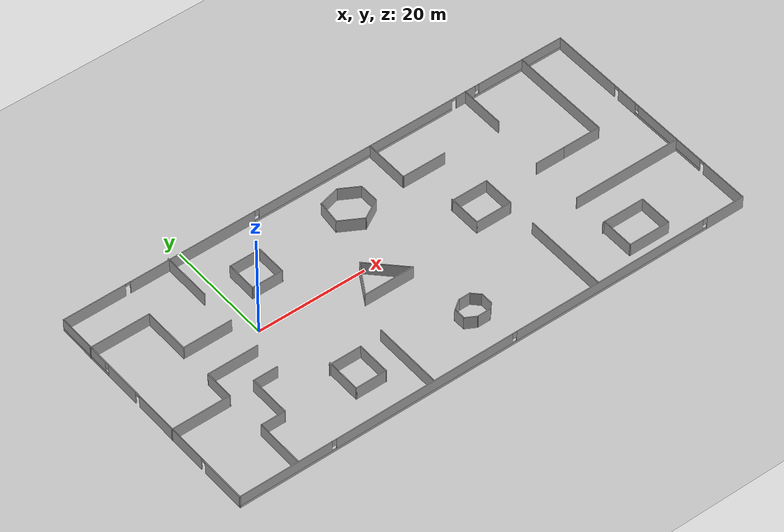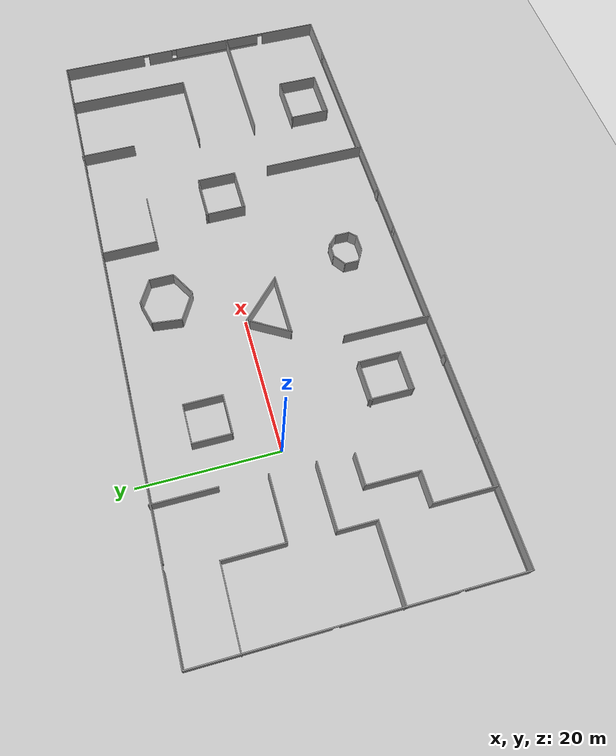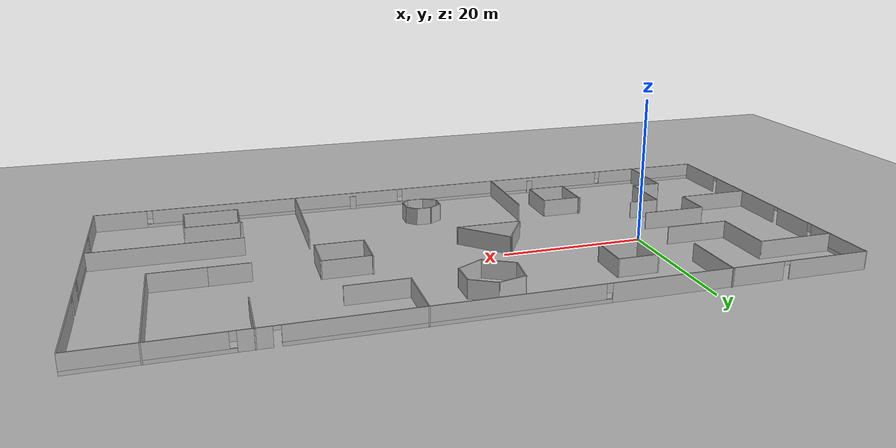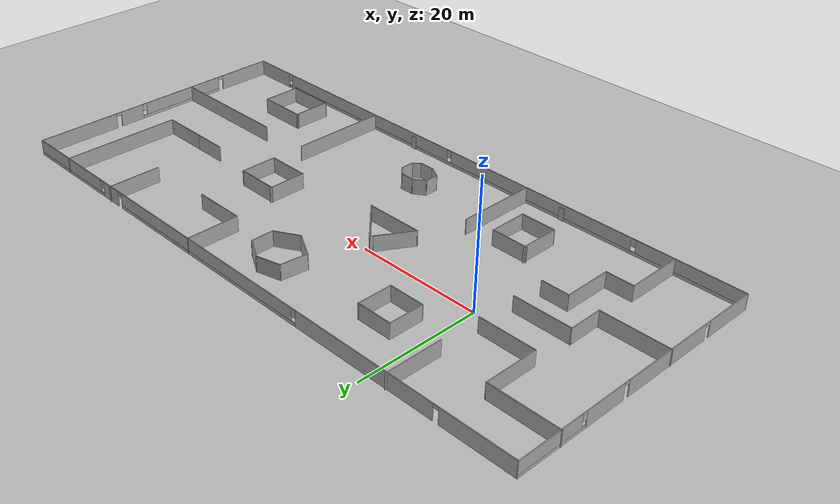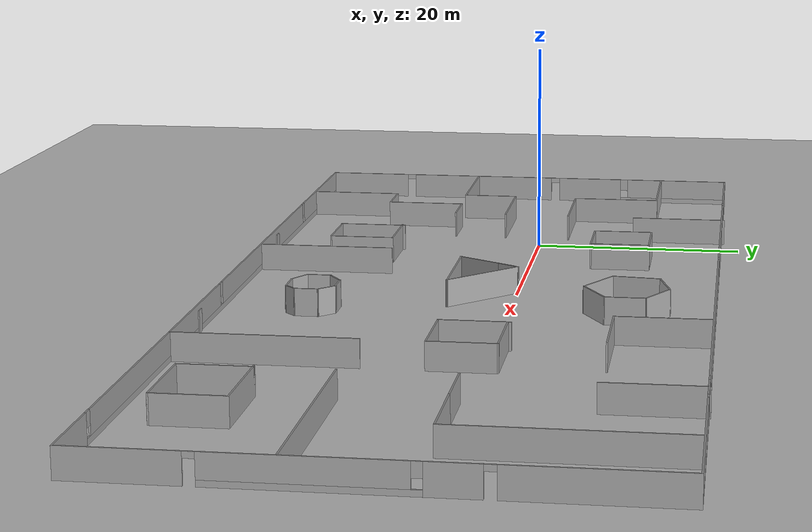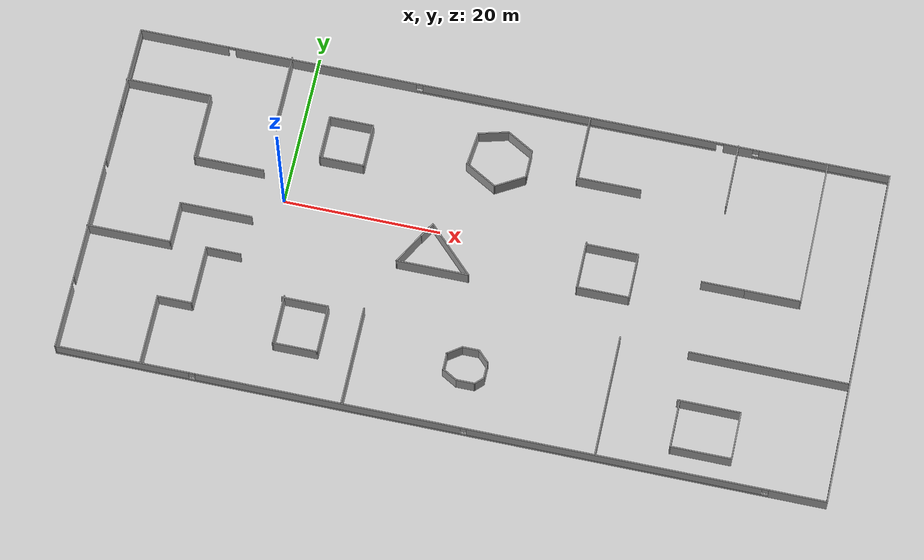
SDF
<sdf version="1.7">
 <world name="default">
  <light name="sun" type="directional">
   <pose>0 0 10 0 -0 0</pose>
   <diffuse>0.8 0.8 0.8 1</diffuse>
   <specular>0.2 0.2 0.2 1</specular>
   <attenuation>
    <range>1000</range>
    <constant>0.9</constant>
    <linear>0.01</linear>
    <quadratic>0.001</quadratic>
   </attenuation>
   <direction>-0.5 0.1 -0.9</direction>
   <spot><inner_angle>0</inner_angle><outer_angle>0</outer_angle><falloff>0</falloff></spot>
  </light>
  <model name="ground_plane">
   <static>1</static>
   <link name="link">
    <collision name="collision">
     <geometry><plane><normal>0 0 1</normal><size>160 160</size></plane></geometry>
     <surface>
      <contact><collide_bitmask>65535</collide_bitmask></contact>
      <friction><ode><mu>100</mu><mu2>50</mu2></ode></friction>
     </surface>
    </collision>
    <visual name="visual">
     <cast_shadows>0</cast_shadows>
     <geometry><plane><normal>0 0 1</normal><size>160 160</size></plane></geometry>
     <material>
      <script><uri>file://media/materials/scripts/gazebo.material</uri><name>Gazebo/Grey</name></script>
     </material>
    </visual>
   </link>
  </model>
  <gravity>0 0 -9.8</gravity>
  <magnetic_field>6e-06 2.3e-05 -4.2e-05</magnetic_field>
  <atmosphere type="adiabatic"/>
  <physics type="ode">
   <max_step_size>0.001</max_step_size>
   <real_time_factor>1</real_time_factor>
   <real_time_update_rate>1000</real_time_update_rate>
  </physics>
  <scene><ambient>0.4 0.4 0.4 1</ambient><background>0.7 0.7 0.7 1</background><shadows>1</shadows></scene>
  <audio><device>default</device></audio>
  <spherical_coordinates>
   <surface_model>EARTH_WGS84</surface_model>
   <latitude_deg>0</latitude_deg>
   <longitude_deg>0</longitude_deg>
   <elevation>0</elevation>
   <heading_deg>0</heading_deg>
  </spherical_coordinates>
  <model name="greatroom">
   <pose>25.3372 -3.54853 0 0 -0 0</pose>
   <link name="Door_4">
    <collision name="Door_4_Collision">
     <geometry><box><size>0.9 0.17 2</size></box></geometry>
     <pose>0 0 1 0 -0 0</pose>
    </collision>
    <visual name="Door_4_Visual">
     <pose>0 0 1 0 -0 0</pose>
     <geometry><box><size>0.9 0.17 2</size></box></geometry>
     <material>
      <script><uri>file://media/materials/scripts/gazebo.material</uri><name>Gazebo/Grey</name></script>
     </material>
    </visual>
    <pose>-18.7086 -21.9426 0 0 -0 0</pose>
   </link>
   <link name="Door_5">
    <collision name="Door_5_Collision">
     <geometry><box><size>0.9 0.17 2</size></box></geometry>
     <pose>0 0 1 0 -0 0</pose>
    </collision>
    <visual name="Door_5_Visual">
     <pose>0 0 1 0 -0 0</pose>
     <geometry><box><size>0.9 0.17 2</size></box></geometry>
     <material>
      <script><uri>file://media/materials/scripts/gazebo.material</uri><name>Gazebo/Grey</name></script>
     </material>
    </visual>
    <pose>10.6212 -21.9426 0 0 -0 0</pose>
   </link>
   <link name="Wall_0">
    <pose>0.102804 21.8155 0 0 -0 0</pose>
    <visual name="Wall_0_Visual_0">
     <pose>-42.5038 0 1.25 0 -0 0</pose>
     <geometry><box><size>11.3823 0.15 2.5</size></box></geometry>
     <material>
      <script><uri>file://media/materials/scripts/gazebo.material</uri><name>Gazebo/Grey</name></script>
      <ambient>1 1 1 1</ambient>
     </material>
     <meta><layer>0</layer></meta>
    </visual>
    <collision name="Wall_0_Collision_0">
     <geometry><box><size>11.3823 0.15 2.5</size></box></geometry>
     <pose>-42.5038 0 1.25 0 -0 0</pose>
    </collision>
    <visual name="Wall_0_Visual_1">
     <pose>-24.1692 0 1.25 0 -0 0</pose>
     <geometry><box><size>23.487 0.15 2.5</size></box></geometry>
     <material>
      <script><uri>file://media/materials/scripts/gazebo.material</uri><name>Gazebo/Grey</name></script>
      <ambient>1 1 1 1</ambient>
     </material>
     <meta><layer>0</layer></meta>
    </visual>
    <collision name="Wall_0_Collision_1">
     <geometry><box><size>23.487 0.15 2.5</size></box></geometry>
     <pose>-24.1692 0 1.25 0 -0 0</pose>
    </collision>
    <visual name="Wall_0_Visual_2">
     <pose>28.8802 0 1.25 0 -0 0</pose>
     <geometry><box><size>3.71938 0.15 2.5</size></box></geometry>
     <material>
      <script><uri>file://media/materials/scripts/gazebo.material</uri><name>Gazebo/Grey</name></script>
      <ambient>1 1 1 1</ambient>
     </material>
     <meta><layer>0</layer></meta>
    </visual>
    <collision name="Wall_0_Collision_2">
     <geometry><box><size>3.71938 0.15 2.5</size></box></geometry>
     <pose>28.8802 0 1.25 0 -0 0</pose>
    </collision>
    <visual name="Wall_0_Visual_3">
     <pose>6.84741 0 0.25 0 -0 0</pose>
     <geometry><box><size>38.5462 0.15 0.5</size></box></geometry>
     <material>
      <script><uri>file://media/materials/scripts/gazebo.material</uri><name>Gazebo/Grey</name></script>
      <ambient>1 1 1 1</ambient>
     </material>
     <meta><layer>0</layer></meta>
    </visual>
    <collision name="Wall_0_Collision_3">
     <geometry><box><size>38.5462 0.15 0.5</size></box></geometry>
     <pose>6.84741 0 0.25 0 -0 0</pose>
    </collision>
    <visual name="Wall_0_Visual_4">
     <pose>39.4674 0 0.25 0 -0 0</pose>
     <geometry><box><size>17.4551 0.15 0.5</size></box></geometry>
     <material>
      <script><uri>file://media/materials/scripts/gazebo.material</uri><name>Gazebo/Grey</name></script>
      <ambient>1 1 1 1</ambient>
     </material>
     <meta><layer>0</layer></meta>
    </visual>
    <collision name="Wall_0_Collision_4">
     <geometry><box><size>17.4551 0.15 0.5</size></box></geometry>
     <pose>39.4674 0 0.25 0 -0 0</pose>
    </collision>
    <visual name="Wall_0_Visual_5">
     <pose>7.24741 0 1.5 0 -0 0</pose>
     <geometry><box><size>37.7462 0.15 2</size></box></geometry>
     <material>
      <script><uri>file://media/materials/scripts/gazebo.material</uri><name>Gazebo/Grey</name></script>
      <ambient>1 1 1 1</ambient>
     </material>
     <meta><layer>0</layer></meta>
    </visual>
    <collision name="Wall_0_Collision_5">
     <geometry><box><size>37.7462 0.15 2</size></box></geometry>
     <pose>7.24741 0 1.5 0 -0 0</pose>
    </collision>
    <visual name="Wall_0_Visual_6">
     <pose>7.24741 0 1.5 0 -0 0</pose>
     <geometry><box><size>37.7462 0.15 2</size></box></geometry>
     <material>
      <script><uri>file://media/materials/scripts/gazebo.material</uri><name>Gazebo/Grey</name></script>
      <ambient>1 1 1 1</ambient>
     </material>
     <meta><layer>0</layer></meta>
    </visual>
    <collision name="Wall_0_Collision_6">
     <geometry><box><size>37.7462 0.15 2</size></box></geometry>
     <pose>7.24741 0 1.5 0 -0 0</pose>
    </collision>
    <visual name="Wall_0_Visual_7">
     <pose>39.8674 0 1.5 0 -0 0</pose>
     <geometry><box><size>16.6551 0.15 2</size></box></geometry>
     <material>
      <script><uri>file://media/materials/scripts/gazebo.material</uri><name>Gazebo/Grey</name></script>
      <ambient>1 1 1 1</ambient>
     </material>
     <meta><layer>0</layer></meta>
    </visual>
    <collision name="Wall_0_Collision_7">
     <geometry><box><size>16.6551 0.15 2</size></box></geometry>
     <pose>39.8674 0 1.5 0 -0 0</pose>
    </collision>
    <visual name="Wall_0_Visual_8">
     <pose>-12.0257 0 1.9 0 -0 0</pose>
     <geometry><box><size>0.8 0.15 1.2</size></box></geometry>
     <material>
      <script><uri>file://media/materials/scripts/gazebo.material</uri><name>Gazebo/Grey</name></script>
      <ambient>1 1 1 1</ambient>
     </material>
     <meta><layer>0</layer></meta>
    </visual>
    <collision name="Wall_0_Collision_8">
     <geometry><box><size>0.8 0.15 1.2</size></box></geometry>
     <pose>-12.0257 0 1.9 0 -0 0</pose>
    </collision>
    <visual name="Wall_0_Visual_9">
     <pose>31.1399 0 1.9 0 -0 0</pose>
     <geometry><box><size>0.8 0.15 1.2</size></box></geometry>
     <material>
      <script><uri>file://media/materials/scripts/gazebo.material</uri><name>Gazebo/Grey</name></script>
      <ambient>1 1 1 1</ambient>
     </material>
     <meta><layer>0</layer></meta>
    </visual>
    <collision name="Wall_0_Collision_9">
     <geometry><box><size>0.8 0.15 1.2</size></box></geometry>
     <pose>31.1399 0 1.9 0 -0 0</pose>
    </collision>
    <visual name="Wall_0_Visual_10">
     <pose>-36.3627 0 2.25 0 -0 0</pose>
     <geometry><box><size>0.9 0.15 0.5</size></box></geometry>
     <material>
      <script><uri>file://media/materials/scripts/gazebo.material</uri><name>Gazebo/Grey</name></script>
      <ambient>1 1 1 1</ambient>
     </material>
     <meta><layer>0</layer></meta>
    </visual>
    <collision name="Wall_0_Collision_10">
     <geometry><box><size>0.9 0.15 0.5</size></box></geometry>
     <pose>-36.3627 0 2.25 0 -0 0</pose>
    </collision>
    <visual name="Wall_0_Visual_11">
     <pose>26.5705 0 2.25 0 -0 0</pose>
     <geometry><box><size>0.9 0.15 0.5</size></box></geometry>
     <material>
      <script><uri>file://media/materials/scripts/gazebo.material</uri><name>Gazebo/Grey</name></script>
      <ambient>1 1 1 1</ambient>
     </material>
     <meta><layer>0</layer></meta>
    </visual>
    <collision name="Wall_0_Collision_11">
     <geometry><box><size>0.9 0.15 0.5</size></box></geometry>
     <pose>26.5705 0 2.25 0 -0 0</pose>
    </collision>
    <visual name="Wall_0_Visual_12">
     <pose>26.5705 0 2.25 0 -0 0</pose>
     <geometry><box><size>0.9 0.15 0.5</size></box></geometry>
     <material>
      <script><uri>file://media/materials/scripts/gazebo.material</uri><name>Gazebo/Grey</name></script>
      <ambient>1 1 1 1</ambient>
     </material>
     <meta><layer>0</layer></meta>
    </visual>
    <collision name="Wall_0_Collision_12">
     <geometry><box><size>0.9 0.15 0.5</size></box></geometry>
     <pose>26.5705 0 2.25 0 -0 0</pose>
    </collision>
   </link>
   <link name="Wall_1">
    <pose>48.223 -0.10956 0 0 -0 -1.57079</pose>
    <visual name="Wall_1_Visual_0">
     <pose>-15.2377 0 1.25 0 -0 0</pose>
     <geometry><box><size>13.5245 0.15 2.5</size></box></geometry>
     <material>
      <script><uri>file://media/materials/scripts/gazebo.material</uri><name>Gazebo/Grey</name></script>
      <ambient>1 1 1 1</ambient>
     </material>
     <meta><layer>0</layer></meta>
    </visual>
    <collision name="Wall_1_Collision_0">
     <geometry><box><size>13.5245 0.15 2.5</size></box></geometry>
     <pose>-15.2377 0 1.25 0 -0 0</pose>
    </collision>
    <visual name="Wall_1_Visual_1">
     <pose>-5.53979 0 1.25 0 -0 0</pose>
     <geometry><box><size>4.0714 0.15 2.5</size></box></geometry>
     <material>
      <script><uri>file://media/materials/scripts/gazebo.material</uri><name>Gazebo/Grey</name></script>
      <ambient>1 1 1 1</ambient>
     </material>
     <meta><layer>0</layer></meta>
    </visual>
    <collision name="Wall_1_Collision_1">
     <geometry><box><size>4.0714 0.15 2.5</size></box></geometry>
     <pose>-5.53979 0 1.25 0 -0 0</pose>
    </collision>
    <visual name="Wall_1_Visual_2">
     <pose>17.4355 0 1.25 0 -0 0</pose>
     <geometry><box><size>9.129 0.15 2.5</size></box></geometry>
     <material>
      <script><uri>file://media/materials/scripts/gazebo.material</uri><name>Gazebo/Grey</name></script>
      <ambient>1 1 1 1</ambient>
     </material>
     <meta><layer>0</layer></meta>
    </visual>
    <collision name="Wall_1_Collision_2">
     <geometry><box><size>9.129 0.15 2.5</size></box></geometry>
     <pose>17.4355 0 1.25 0 -0 0</pose>
    </collision>
    <visual name="Wall_1_Visual_3">
     <pose>4.23346 0 0.25 0 -0 0</pose>
     <geometry><box><size>15.4751 0.15 0.5</size></box></geometry>
     <material>
      <script><uri>file://media/materials/scripts/gazebo.material</uri><name>Gazebo/Grey</name></script>
      <ambient>1 1 1 1</ambient>
     </material>
     <meta><layer>0</layer></meta>
    </visual>
    <collision name="Wall_1_Collision_3">
     <geometry><box><size>15.4751 0.15 0.5</size></box></geometry>
     <pose>4.23346 0 0.25 0 -0 0</pose>
    </collision>
    <visual name="Wall_1_Visual_4">
     <pose>4.63346 0 1.5 0 -0 0</pose>
     <geometry><box><size>14.6751 0.15 2</size></box></geometry>
     <material>
      <script><uri>file://media/materials/scripts/gazebo.material</uri><name>Gazebo/Grey</name></script>
      <ambient>1 1 1 1</ambient>
     </material>
     <meta><layer>0</layer></meta>
    </visual>
    <collision name="Wall_1_Collision_4">
     <geometry><box><size>14.6751 0.15 2</size></box></geometry>
     <pose>4.63346 0 1.5 0 -0 0</pose>
    </collision>
    <visual name="Wall_1_Visual_5">
     <pose>-3.10409 0 1.9 0 -0 0</pose>
     <geometry><box><size>0.8 0.15 1.2</size></box></geometry>
     <material>
      <script><uri>file://media/materials/scripts/gazebo.material</uri><name>Gazebo/Grey</name></script>
      <ambient>1 1 1 1</ambient>
     </material>
     <meta><layer>0</layer></meta>
    </visual>
    <collision name="Wall_1_Collision_5">
     <geometry><box><size>0.8 0.15 1.2</size></box></geometry>
     <pose>-3.10409 0 1.9 0 -0 0</pose>
    </collision>
    <visual name="Wall_1_Visual_6">
     <pose>-8.02549 0 2.25 0 -0 0</pose>
     <geometry><box><size>0.9 0.15 0.5</size></box></geometry>
     <material>
      <script><uri>file://media/materials/scripts/gazebo.material</uri><name>Gazebo/Grey</name></script>
      <ambient>1 1 1 1</ambient>
     </material>
     <meta><layer>0</layer></meta>
    </visual>
    <collision name="Wall_1_Collision_6">
     <geometry><box><size>0.9 0.15 0.5</size></box></geometry>
     <pose>-8.02549 0 2.25 0 -0 0</pose>
    </collision>
    <visual name="Wall_1_Visual_7">
     <pose>12.421 0 2.25 0 -0 0</pose>
     <geometry><box><size>0.9 0.15 0.5</size></box></geometry>
     <material>
      <script><uri>file://media/materials/scripts/gazebo.material</uri><name>Gazebo/Grey</name></script>
      <ambient>1 1 1 1</ambient>
     </material>
     <meta><layer>0</layer></meta>
    </visual>
    <collision name="Wall_1_Collision_7">
     <geometry><box><size>0.9 0.15 0.5</size></box></geometry>
     <pose>12.421 0 2.25 0 -0 0</pose>
    </collision>
   </link>
   <link name="Wall_13">
    <collision name="Wall_13_Collision">
     <geometry><box><size>11 0.15 2.5</size></box></geometry>
     <pose>0 0 1.25 0 -0 0</pose>
    </collision>
    <visual name="Wall_13_Visual">
     <pose>0 0 1.25 0 -0 0</pose>
     <geometry><box><size>11 0.15 2.5</size></box></geometry>
     <material>
      <script><uri>file://media/materials/scripts/gazebo.material</uri><name>Gazebo/Grey</name></script>
      <ambient>1 1 1 1</ambient>
     </material>
     <meta><layer>0</layer></meta>
    </visual>
    <pose>-42.7981 14.808 0 0 -0 0</pose>
   </link>
   <link name="Wall_14">
    <collision name="Wall_14_Collision">
     <geometry><box><size>8.75 0.15 2.5</size></box></geometry>
     <pose>0 0 1.25 0 -0 0</pose>
    </collision>
    <visual name="Wall_14_Visual">
     <pose>0 0 1.25 0 -0 0</pose>
     <geometry><box><size>8.75 0.15 2.5</size></box></geometry>
     <material>
      <script><uri>file://media/materials/scripts/gazebo.material</uri><name>Gazebo/Grey</name></script>
      <ambient>1 1 1 1</ambient>
     </material>
     <meta><layer>0</layer></meta>
    </visual>
    <pose>-37.3731 10.508 0 0 -0 -1.5708</pose>
   </link>
   <link name="Wall_15">
    <collision name="Wall_15_Collision">
     <geometry><box><size>9 0.15 2.5</size></box></geometry>
     <pose>0 0 1.25 0 -0 0</pose>
    </collision>
    <visual name="Wall_15_Visual">
     <pose>0 0 1.25 0 -0 0</pose>
     <geometry><box><size>9 0.15 2.5</size></box></geometry>
     <material>
      <script><uri>file://media/materials/scripts/gazebo.material</uri><name>Gazebo/Grey</name></script>
      <ambient>1 1 1 1</ambient>
     </material>
     <meta><layer>0</layer></meta>
    </visual>
    <pose>-32.9481 6.20802 0 0 -0 0</pose>
   </link>
   <link name="Wall_17">
    <collision name="Wall_17_Collision">
     <geometry><box><size>5.75 0.15 2.5</size></box></geometry>
     <pose>0 0 1.25 0 -0 0</pose>
    </collision>
    <visual name="Wall_17_Visual">
     <pose>0 0 1.25 0 -0 0</pose>
     <geometry><box><size>5.75 0.15 2.5</size></box></geometry>
     <material>
      <script><uri>file://media/materials/scripts/gazebo.material</uri><name>Gazebo/Grey</name></script>
      <ambient>1 1 1 1</ambient>
     </material>
     <meta><layer>0</layer></meta>
    </visual>
    <pose>-19.2256 15.0608 0 0 -0 0</pose>
   </link>
   <link name="Wall_18">
    <collision name="Wall_18_Collision">
     <geometry><box><size>5.75 0.15 2.5</size></box></geometry>
     <pose>0 0 1.25 0 -0 0</pose>
    </collision>
    <visual name="Wall_18_Visual">
     <pose>0 0 1.25 0 -0 0</pose>
     <geometry><box><size>5.75 0.15 2.5</size></box></geometry>
     <material>
      <script><uri>file://media/materials/scripts/gazebo.material</uri><name>Gazebo/Grey</name></script>
      <ambient>1 1 1 1</ambient>
     </material>
     <meta><layer>0</layer></meta>
    </visual>
    <pose>-16.4256 12.2608 0 0 -0 -1.5708</pose>
   </link>
   <link name="Wall_19">
    <collision name="Wall_19_Collision">
     <geometry><box><size>5.75 0.15 2.5</size></box></geometry>
     <pose>0 0 1.25 0 -0 0</pose>
    </collision>
    <visual name="Wall_19_Visual">
     <pose>0 0 1.25 0 -0 0</pose>
     <geometry><box><size>5.75 0.15 2.5</size></box></geometry>
     <material>
      <script><uri>file://media/materials/scripts/gazebo.material</uri><name>Gazebo/Grey</name></script>
      <ambient>1 1 1 1</ambient>
     </material>
     <meta><layer>0</layer></meta>
    </visual>
    <pose>-19.2256 9.46084 0 0 -0 3.14159</pose>
   </link>
   <link name="Wall_2">
    <pose>0.048098 -22.0347 0 0 -0 3.14159</pose>
    <visual name="Wall_2_Visual_0">
     <pose>-44.6117 0 1.25 0 -0 0</pose>
     <geometry><box><size>7.27656 0.15 2.5</size></box></geometry>
     <material>
      <script><uri>file://media/materials/scripts/gazebo.material</uri><name>Gazebo/Grey</name></script>
      <ambient>1 1 1 1</ambient>
     </material>
     <meta><layer>0</layer></meta>
    </visual>
    <collision name="Wall_2_Collision_0">
     <geometry><box><size>7.27656 0.15 2.5</size></box></geometry>
     <pose>-44.6117 0 1.25 0 -0 0</pose>
    </collision>
    <visual name="Wall_2_Visual_1">
     <pose>3.63828 0 0.25 0 -0 0</pose>
     <geometry><box><size>89.2234 0.15 0.5</size></box></geometry>
     <material>
      <script><uri>file://media/materials/scripts/gazebo.material</uri><name>Gazebo/Grey</name></script>
      <ambient>1 1 1 1</ambient>
     </material>
     <meta><layer>0</layer></meta>
    </visual>
    <collision name="Wall_2_Collision_1">
     <geometry><box><size>89.2234 0.15 0.5</size></box></geometry>
     <pose>3.63828 0 0.25 0 -0 0</pose>
    </collision>
    <visual name="Wall_2_Visual_2">
     <pose>-21.8488 0 1.5 0 -0 0</pose>
     <geometry><box><size>36.6492 0.15 2</size></box></geometry>
     <material>
      <script><uri>file://media/materials/scripts/gazebo.material</uri><name>Gazebo/Grey</name></script>
      <ambient>1 1 1 1</ambient>
     </material>
     <meta><layer>0</layer></meta>
    </visual>
    <collision name="Wall_2_Collision_2">
     <geometry><box><size>36.6492 0.15 2</size></box></geometry>
     <pose>-21.8488 0 1.5 0 -0 0</pose>
    </collision>
    <visual name="Wall_2_Visual_3">
     <pose>13.9027 0 1.5 0 -0 0</pose>
     <geometry><box><size>33.2539 0.15 2</size></box></geometry>
     <material>
      <script><uri>file://media/materials/scripts/gazebo.material</uri><name>Gazebo/Grey</name></script>
      <ambient>1 1 1 1</ambient>
     </material>
     <meta><layer>0</layer></meta>
    </visual>
    <collision name="Wall_2_Collision_3">
     <geometry><box><size>33.2539 0.15 2</size></box></geometry>
     <pose>13.9027 0 1.5 0 -0 0</pose>
    </collision>
    <visual name="Wall_2_Visual_4">
     <pose>39.7898 0 1.5 0 -0 0</pose>
     <geometry><box><size>16.9203 0.15 2</size></box></geometry>
     <material>
      <script><uri>file://media/materials/scripts/gazebo.material</uri><name>Gazebo/Grey</name></script>
      <ambient>1 1 1 1</ambient>
     </material>
     <meta><layer>0</layer></meta>
    </visual>
    <collision name="Wall_2_Collision_4">
     <geometry><box><size>16.9203 0.15 2</size></box></geometry>
     <pose>39.7898 0 1.5 0 -0 0</pose>
    </collision>
    <visual name="Wall_2_Visual_5">
     <pose>-40.5734 0 1.9 0 -0 0</pose>
     <geometry><box><size>0.8 0.15 1.2</size></box></geometry>
     <material>
      <script><uri>file://media/materials/scripts/gazebo.material</uri><name>Gazebo/Grey</name></script>
      <ambient>1 1 1 1</ambient>
     </material>
     <meta><layer>0</layer></meta>
    </visual>
    <collision name="Wall_2_Collision_5">
     <geometry><box><size>0.8 0.15 1.2</size></box></geometry>
     <pose>-40.5734 0 1.9 0 -0 0</pose>
    </collision>
    <visual name="Wall_2_Visual_6">
     <pose>-3.12424 0 1.9 0 -0 0</pose>
     <geometry><box><size>0.8 0.15 1.2</size></box></geometry>
     <material>
      <script><uri>file://media/materials/scripts/gazebo.material</uri><name>Gazebo/Grey</name></script>
      <ambient>1 1 1 1</ambient>
     </material>
     <meta><layer>0</layer></meta>
    </visual>
    <collision name="Wall_2_Collision_6">
     <geometry><box><size>0.8 0.15 1.2</size></box></geometry>
     <pose>-3.12424 0 1.9 0 -0 0</pose>
    </collision>
    <visual name="Wall_2_Visual_7">
     <pose>30.9297 0 1.9 0 -0 0</pose>
     <geometry><box><size>0.8 0.15 1.2</size></box></geometry>
     <material>
      <script><uri>file://media/materials/scripts/gazebo.material</uri><name>Gazebo/Grey</name></script>
      <ambient>1 1 1 1</ambient>
     </material>
     <meta><layer>0</layer></meta>
    </visual>
    <collision name="Wall_2_Collision_7">
     <geometry><box><size>0.8 0.15 1.2</size></box></geometry>
     <pose>30.9297 0 1.9 0 -0 0</pose>
    </collision>
   </link>
   <link name="Wall_20">
    <collision name="Wall_20_Collision">
     <geometry><box><size>5.75 0.15 2.5</size></box></geometry>
     <pose>0 0 1.25 0 -0 0</pose>
    </collision>
    <visual name="Wall_20_Visual">
     <pose>0 0 1.25 0 -0 0</pose>
     <geometry><box><size>5.75 0.15 2.5</size></box></geometry>
     <material>
      <script><uri>file://media/materials/scripts/gazebo.material</uri><name>Gazebo/Grey</name></script>
      <ambient>1 1 1 1</ambient>
     </material>
     <meta><layer>0</layer></meta>
    </visual>
    <pose>-22.0256 12.2608 0 0 -0 1.5708</pose>
   </link>
   <link name="Wall_22">
    <collision name="Wall_22_Collision">
     <geometry><box><size>10.75 0.15 2.5</size></box></geometry>
     <pose>0 0 1.25 0 -0 0</pose>
    </collision>
    <visual name="Wall_22_Visual">
     <pose>0 0 1.25 0 -0 0</pose>
     <geometry><box><size>10.75 0.15 2.5</size></box></geometry>
     <material>
      <script><uri>file://media/materials/scripts/gazebo.material</uri><name>Gazebo/Grey</name></script>
      <ambient>1 1 1 1</ambient>
     </material>
     <meta><layer>0</layer></meta>
    </visual>
    <pose>-42.9068 -5.59644 0 0 -0 0</pose>
   </link>
   <link name="Wall_23">
    <collision name="Wall_23_Collision">
     <geometry><box><size>5.5 0.15 2.5</size></box></geometry>
     <pose>0 0 1.25 0 -0 0</pose>
    </collision>
    <visual name="Wall_23_Visual">
     <pose>0 0 1.25 0 -0 0</pose>
     <geometry><box><size>5.5 0.15 2.5</size></box></geometry>
     <material>
      <script><uri>file://media/materials/scripts/gazebo.material</uri><name>Gazebo/Grey</name></script>
      <ambient>1 1 1 1</ambient>
     </material>
     <meta><layer>0</layer></meta>
    </visual>
    <pose>-37.6068 -2.92144 0 0 -0 1.5708</pose>
   </link>
   <link name="Wall_24">
    <collision name="Wall_24_Collision">
     <geometry><box><size>9.25 0.15 2.5</size></box></geometry>
     <pose>0 0 1.25 0 -0 0</pose>
    </collision>
    <visual name="Wall_24_Visual">
     <pose>0 0 1.25 0 -0 0</pose>
     <geometry><box><size>9.25 0.15 2.5</size></box></geometry>
     <material>
      <script><uri>file://media/materials/scripts/gazebo.material</uri><name>Gazebo/Grey</name></script>
      <ambient>1 1 1 1</ambient>
     </material>
     <meta><layer>0</layer></meta>
    </visual>
    <pose>-33.0568 -0.24644 0 0 -0 0</pose>
   </link>
   <link name="Wall_26">
    <collision name="Wall_26_Collision">
     <geometry><box><size>9 0.15 2.5</size></box></geometry>
     <pose>0 0 1.25 0 -0 0</pose>
    </collision>
    <visual name="Wall_26_Visual">
     <pose>0 0 1.25 0 -0 0</pose>
     <geometry><box><size>9 0.15 2.5</size></box></geometry>
     <material>
      <script><uri>file://media/materials/scripts/gazebo.material</uri><name>Gazebo/Grey</name></script>
      <ambient>1 1 1 1</ambient>
     </material>
     <meta><layer>0</layer></meta>
    </visual>
    <pose>-37.4148 -17.4463 0 0 -0 1.5708</pose>
   </link>
   <link name="Wall_27">
    <collision name="Wall_27_Collision">
     <geometry><box><size>4.5 0.15 2.5</size></box></geometry>
     <pose>0 0 1.25 0 -0 0</pose>
    </collision>
    <visual name="Wall_27_Visual">
     <pose>0 0 1.25 0 -0 0</pose>
     <geometry><box><size>4.5 0.15 2.5</size></box></geometry>
     <material>
      <script><uri>file://media/materials/scripts/gazebo.material</uri><name>Gazebo/Grey</name></script>
      <ambient>1 1 1 1</ambient>
     </material>
     <meta><layer>0</layer></meta>
    </visual>
    <pose>-35.2398 -13.0213 0 0 -0 0</pose>
   </link>
   <link name="Wall_28">
    <collision name="Wall_28_Collision">
     <geometry><box><size>7.75 0.15 2.5</size></box></geometry>
     <pose>0 0 1.25 0 -0 0</pose>
    </collision>
    <visual name="Wall_28_Visual">
     <pose>0 0 1.25 0 -0 0</pose>
     <geometry><box><size>7.75 0.15 2.5</size></box></geometry>
     <material>
      <script><uri>file://media/materials/scripts/gazebo.material</uri><name>Gazebo/Grey</name></script>
      <ambient>1 1 1 1</ambient>
     </material>
     <meta><layer>0</layer></meta>
    </visual>
    <pose>-33.0648 -9.2213 0 0 -0 1.5708</pose>
   </link>
   <link name="Wall_29">
    <collision name="Wall_29_Collision">
     <geometry><box><size>4.5 0.15 2.5</size></box></geometry>
     <pose>0 0 1.25 0 -0 0</pose>
    </collision>
    <visual name="Wall_29_Visual">
     <pose>0 0 1.25 0 -0 0</pose>
     <geometry><box><size>4.5 0.15 2.5</size></box></geometry>
     <material>
      <script><uri>file://media/materials/scripts/gazebo.material</uri><name>Gazebo/Grey</name></script>
      <ambient>1 1 1 1</ambient>
     </material>
     <meta><layer>0</layer></meta>
    </visual>
    <pose>-30.8898 -5.4213 0 0 -0 0</pose>
   </link>
   <link name="Wall_3">
    <pose>-48.1269 -0.109654 0 0 -0 1.5708</pose>
    <visual name="Wall_3_Visual_0">
     <pose>-17.7763 0 1.25 0 -0 0</pose>
     <geometry><box><size>8.44747 0.15 2.5</size></box></geometry>
     <material>
      <script><uri>file://media/materials/scripts/gazebo.material</uri><name>Gazebo/Grey</name></script>
      <ambient>1 1 1 1</ambient>
     </material>
     <meta><layer>0</layer></meta>
    </visual>
    <collision name="Wall_3_Collision_0">
     <geometry><box><size>8.44747 0.15 2.5</size></box></geometry>
     <pose>-17.7763 0 1.25 0 -0 0</pose>
    </collision>
    <visual name="Wall_3_Visual_1">
     <pose>-4.96629 0 1.25 0 -0 0</pose>
     <geometry><box><size>15.3725 0.15 2.5</size></box></geometry>
     <material>
      <script><uri>file://media/materials/scripts/gazebo.material</uri><name>Gazebo/Grey</name></script>
      <ambient>1 1 1 1</ambient>
     </material>
     <meta><layer>0</layer></meta>
    </visual>
    <collision name="Wall_3_Collision_1">
     <geometry><box><size>15.3725 0.15 2.5</size></box></geometry>
     <pose>-4.96629 0 1.25 0 -0 0</pose>
    </collision>
    <visual name="Wall_3_Visual_2">
     <pose>7.02488 0 1.25 0 -0 0</pose>
     <geometry><box><size>6.80984 0.15 2.5</size></box></geometry>
     <material>
      <script><uri>file://media/materials/scripts/gazebo.material</uri><name>Gazebo/Grey</name></script>
      <ambient>1 1 1 1</ambient>
     </material>
     <meta><layer>0</layer></meta>
    </visual>
    <collision name="Wall_3_Collision_2">
     <geometry><box><size>6.80984 0.15 2.5</size></box></geometry>
     <pose>7.02488 0 1.25 0 -0 0</pose>
    </collision>
    <visual name="Wall_3_Visual_3">
     <pose>16.2149 0 0.25 0 -0 0</pose>
     <geometry><box><size>11.5702 0.15 0.5</size></box></geometry>
     <material>
      <script><uri>file://media/materials/scripts/gazebo.material</uri><name>Gazebo/Grey</name></script>
      <ambient>1 1 1 1</ambient>
     </material>
     <meta><layer>0</layer></meta>
    </visual>
    <collision name="Wall_3_Collision_3">
     <geometry><box><size>11.5702 0.15 0.5</size></box></geometry>
     <pose>16.2149 0 0.25 0 -0 0</pose>
    </collision>
    <visual name="Wall_3_Visual_4">
     <pose>16.6149 0 1.5 0 -0 0</pose>
     <geometry><box><size>10.7702 0.15 2</size></box></geometry>
     <material>
      <script><uri>file://media/materials/scripts/gazebo.material</uri><name>Gazebo/Grey</name></script>
      <ambient>1 1 1 1</ambient>
     </material>
     <meta><layer>0</layer></meta>
    </visual>
    <collision name="Wall_3_Collision_4">
     <geometry><box><size>10.7702 0.15 2</size></box></geometry>
     <pose>16.6149 0 1.5 0 -0 0</pose>
    </collision>
    <visual name="Wall_3_Visual_5">
     <pose>10.8298 0 1.9 0 -0 0</pose>
     <geometry><box><size>0.8 0.15 1.2</size></box></geometry>
     <material>
      <script><uri>file://media/materials/scripts/gazebo.material</uri><name>Gazebo/Grey</name></script>
      <ambient>1 1 1 1</ambient>
     </material>
     <meta><layer>0</layer></meta>
    </visual>
    <collision name="Wall_3_Collision_5">
     <geometry><box><size>0.8 0.15 1.2</size></box></geometry>
     <pose>10.8298 0 1.9 0 -0 0</pose>
    </collision>
    <visual name="Wall_3_Visual_6">
     <pose>-13.1025 0 2.25 0 -0 0</pose>
     <geometry><box><size>0.9 0.15 0.5</size></box></geometry>
     <material>
      <script><uri>file://media/materials/scripts/gazebo.material</uri><name>Gazebo/Grey</name></script>
      <ambient>1 1 1 1</ambient>
     </material>
     <meta><layer>0</layer></meta>
    </visual>
    <collision name="Wall_3_Collision_6">
     <geometry><box><size>0.9 0.15 0.5</size></box></geometry>
     <pose>-13.1025 0 2.25 0 -0 0</pose>
    </collision>
    <visual name="Wall_3_Visual_7">
     <pose>3.16996 0 2.25 0 -0 0</pose>
     <geometry><box><size>0.9 0.15 0.5</size></box></geometry>
     <material>
      <script><uri>file://media/materials/scripts/gazebo.material</uri><name>Gazebo/Grey</name></script>
      <ambient>1 1 1 1</ambient>
     </material>
     <meta><layer>0</layer></meta>
    </visual>
    <collision name="Wall_3_Collision_7">
     <geometry><box><size>0.9 0.15 0.5</size></box></geometry>
     <pose>3.16996 0 2.25 0 -0 0</pose>
    </collision>
   </link>
   <link name="Wall_31">
    <collision name="Wall_31_Collision">
     <geometry><box><size>9.25 0.15 2.5</size></box></geometry>
     <pose>0 0 1.25 0 -0 0</pose>
    </collision>
    <visual name="Wall_31_Visual">
     <pose>0 0 1.25 0 -0 0</pose>
     <geometry><box><size>9.25 0.15 2.5</size></box></geometry>
     <material>
      <script><uri>file://media/materials/scripts/gazebo.material</uri><name>Gazebo/Grey</name></script>
      <ambient>1 1 1 1</ambient>
     </material>
     <meta><layer>0</layer></meta>
    </visual>
    <pose>-28.4829 17.4847 0 0 -0 -1.5708</pose>
   </link>
   <link name="Wall_33">
    <collision name="Wall_33_Collision">
     <geometry><box><size>6 0.15 2.5</size></box></geometry>
     <pose>0 0 1.25 0 -0 0</pose>
    </collision>
    <visual name="Wall_33_Visual">
     <pose>0 0 1.25 0 -0 0</pose>
     <geometry><box><size>6 0.15 2.5</size></box></geometry>
     <material>
      <script><uri>file://media/materials/scripts/gazebo.material</uri><name>Gazebo/Grey</name></script>
      <ambient>1 1 1 1</ambient>
     </material>
     <meta><layer>0</layer></meta>
    </visual>
    <pose>-19.424 -9.9263 0 0 -0 0</pose>
   </link>
   <link name="Wall_34">
    <collision name="Wall_34_Collision">
     <geometry><box><size>6.25 0.15 2.5</size></box></geometry>
     <pose>0 0 1.25 0 -0 0</pose>
    </collision>
    <visual name="Wall_34_Visual">
     <pose>0 0 1.25 0 -0 0</pose>
     <geometry><box><size>6.25 0.15 2.5</size></box></geometry>
     <material>
      <script><uri>file://media/materials/scripts/gazebo.material</uri><name>Gazebo/Grey</name></script>
      <ambient>1 1 1 1</ambient>
     </material>
     <meta><layer>0</layer></meta>
    </visual>
    <pose>-16.499 -12.9763 0 0 -0 -1.5708</pose>
   </link>
   <link name="Wall_35">
    <collision name="Wall_35_Collision">
     <geometry><box><size>5.75 0.15 2.5</size></box></geometry>
     <pose>0 0 1.25 0 -0 0</pose>
    </collision>
    <visual name="Wall_35_Visual">
     <pose>0 0 1.25 0 -0 0</pose>
     <geometry><box><size>5.75 0.15 2.5</size></box></geometry>
     <material>
      <script><uri>file://media/materials/scripts/gazebo.material</uri><name>Gazebo/Grey</name></script>
      <ambient>1 1 1 1</ambient>
     </material>
     <meta><layer>0</layer></meta>
    </visual>
    <pose>-19.299 -16.0263 0 0 -0 3.14159</pose>
   </link>
   <link name="Wall_36">
    <collision name="Wall_36_Collision">
     <geometry><box><size>6.5 0.15 2.5</size></box></geometry>
     <pose>0 0 1.25 0 -0 0</pose>
    </collision>
    <visual name="Wall_36_Visual">
     <pose>0 0 1.25 0 -0 0</pose>
     <geometry><box><size>6.5 0.15 2.5</size></box></geometry>
     <material>
      <script><uri>file://media/materials/scripts/gazebo.material</uri><name>Gazebo/Grey</name></script>
      <ambient>1 1 1 1</ambient>
     </material>
     <meta><layer>0</layer></meta>
    </visual>
    <pose>-22.099 -12.8513 0 0 -0 1.5708</pose>
   </link>
   <link name="Wall_38">
    <collision name="Wall_38_Collision">
     <geometry><box><size>4 0.15 2.5</size></box></geometry>
     <pose>0 0 1.25 0 -0 0</pose>
    </collision>
    <visual name="Wall_38_Visual">
     <pose>0 0 1.25 0 -0 0</pose>
     <geometry><box><size>4 0.15 2.5</size></box></geometry>
     <material>
      <script><uri>file://media/materials/scripts/gazebo.material</uri><name>Gazebo/Grey</name></script>
      <ambient>1 1 1 1</ambient>
     </material>
     <meta><layer>0</layer></meta>
    </visual>
    <pose>-1.44217 17.2599 0 0 -0 0.261799</pose>
   </link>
   <link name="Wall_39">
    <collision name="Wall_39_Collision">
     <geometry><box><size>4 0.15 2.5</size></box></geometry>
     <pose>0 0 1.25 0 -0 0</pose>
    </collision>
    <visual name="Wall_39_Visual">
     <pose>0 0 1.25 0 -0 0</pose>
     <geometry><box><size>4 0.15 2.5</size></box></geometry>
     <material>
      <script><uri>file://media/materials/scripts/gazebo.material</uri><name>Gazebo/Grey</name></script>
      <ambient>1 1 1 1</ambient>
     </material>
     <meta><layer>0</layer></meta>
    </visual>
    <pose>2.08433 16.7956 0 0 -0 -0.523599</pose>
   </link>
   <link name="Wall_40">
    <collision name="Wall_40_Collision">
     <geometry><box><size>3.75 0.15 2.5</size></box></geometry>
     <pose>0 0 1.25 0 -0 0</pose>
    </collision>
    <visual name="Wall_40_Visual">
     <pose>0 0 1.25 0 -0 0</pose>
     <geometry><box><size>3.75 0.15 2.5</size></box></geometry>
     <material>
      <script><uri>file://media/materials/scripts/gazebo.material</uri><name>Gazebo/Grey</name></script>
      <ambient>1 1 1 1</ambient>
     </material>
     <meta><layer>0</layer></meta>
    </visual>
    <pose>3.75143 14.0331 0 0 -0 -1.5708</pose>
   </link>
   <link name="Wall_41">
    <collision name="Wall_41_Collision">
     <geometry><box><size>4.25 0.15 2.5</size></box></geometry>
     <pose>0 0 1.25 0 -0 0</pose>
    </collision>
    <visual name="Wall_41_Visual">
     <pose>0 0 1.25 0 -0 0</pose>
     <geometry><box><size>4.25 0.15 2.5</size></box></geometry>
     <material>
      <script><uri>file://media/materials/scripts/gazebo.material</uri><name>Gazebo/Grey</name></script>
      <ambient>1 1 1 1</ambient>
     </material>
     <meta><layer>0</layer></meta>
    </visual>
    <pose>1.97608 11.2081 0 0 -0 -2.61799</pose>
   </link>
   <link name="Wall_42">
    <collision name="Wall_42_Collision">
     <geometry><box><size>4.75 0.15 2.5</size></box></geometry>
     <pose>0 0 1.25 0 -0 0</pose>
    </collision>
    <visual name="Wall_42_Visual">
     <pose>0 0 1.25 0 -0 0</pose>
     <geometry><box><size>4.75 0.15 2.5</size></box></geometry>
     <material>
      <script><uri>file://media/materials/scripts/gazebo.material</uri><name>Gazebo/Grey</name></script>
      <ambient>1 1 1 1</ambient>
     </material>
     <meta><layer>0</layer></meta>
    </visual>
    <pose>-1.79113 11.3331 0 0 -0 2.61799</pose>
   </link>
   <link name="Wall_43">
    <collision name="Wall_43_Collision">
     <geometry><box><size>4.45554 0.15 2.5</size></box></geometry>
     <pose>0 0 1.25 0 -0 0</pose>
    </collision>
    <visual name="Wall_43_Visual">
     <pose>0 0 1.25 0 -0 0</pose>
     <geometry><box><size>4.45554 0.15 2.5</size></box></geometry>
     <material>
      <script><uri>file://media/materials/scripts/gazebo.material</uri><name>Gazebo/Grey</name></script>
      <ambient>1 1 1 1</ambient>
     </material>
     <meta><layer>0</layer></meta>
    </visual>
    <pose>-3.54229 14.6224 0 0 -0 1.45875</pose>
   </link>
   <link name="Wall_45">
    <collision name="Wall_45_Collision">
     <geometry><box><size>6.25 0.15 2.5</size></box></geometry>
     <pose>0 0 1.25 0 -0 0</pose>
    </collision>
    <visual name="Wall_45_Visual">
     <pose>0 0 1.25 0 -0 0</pose>
     <geometry><box><size>6.25 0.15 2.5</size></box></geometry>
     <material>
      <script><uri>file://media/materials/scripts/gazebo.material</uri><name>Gazebo/Grey</name></script>
      <ambient>1 1 1 1</ambient>
     </material>
     <meta><layer>0</layer></meta>
    </visual>
    <pose>-8.05496 0.453454 0 0 -0 -2.0944</pose>
   </link>
   <link name="Wall_46">
    <collision name="Wall_46_Collision">
     <geometry><box><size>9.25 0.15 2.5</size></box></geometry>
     <pose>0 0 1.25 0 -0 0</pose>
    </collision>
    <visual name="Wall_46_Visual">
     <pose>0 0 1.25 0 -0 0</pose>
     <geometry><box><size>9.25 0.15 2.5</size></box></geometry>
     <material>
      <script><uri>file://media/materials/scripts/gazebo.material</uri><name>Gazebo/Grey</name></script>
      <ambient>1 1 1 1</ambient>
     </material>
     <meta><layer>0</layer></meta>
    </visual>
    <pose>-5.02996 -2.18792 0 0 -0 0</pose>
   </link>
   <link name="Wall_47">
    <collision name="Wall_47_Collision">
     <geometry><box><size>8.25 0.15 2.5</size></box></geometry>
     <pose>0 0 1.25 0 -0 0</pose>
    </collision>
    <visual name="Wall_47_Visual">
     <pose>0 0 1.25 0 -0 0</pose>
     <geometry><box><size>8.25 0.15 2.5</size></box></geometry>
     <material>
      <script><uri>file://media/materials/scripts/gazebo.material</uri><name>Gazebo/Grey</name></script>
      <ambient>1 1 1 1</ambient>
     </material>
     <meta><layer>0</layer></meta>
    </visual>
    <pose>-3.34374 0.675859 0 0 -0 2.35619</pose>
   </link>
   <link name="Wall_48">
    <collision name="Wall_48_Collision">
     <geometry><box><size>2.25 0.15 2.5</size></box></geometry>
     <pose>0 0 1.25 0 -0 0</pose>
    </collision>
    <visual name="Wall_48_Visual">
     <pose>0 0 1.25 0 -0 0</pose>
     <geometry><box><size>2.25 0.15 2.5</size></box></geometry>
     <material>
      <script><uri>file://media/materials/scripts/gazebo.material</uri><name>Gazebo/Grey</name></script>
      <ambient>1 1 1 1</ambient>
     </material>
     <meta><layer>0</layer></meta>
    </visual>
    <pose>-6.73252 2.63031 0 0 -0 -2.0944</pose>
   </link>
   <link name="Wall_50">
    <collision name="Wall_50_Collision">
     <geometry><box><size>8.5 0.15 2.5</size></box></geometry>
     <pose>0 0 1.25 0 -0 0</pose>
    </collision>
    <visual name="Wall_50_Visual">
     <pose>0 0 1.25 0 -0 0</pose>
     <geometry><box><size>8.5 0.15 2.5</size></box></geometry>
     <material>
      <script><uri>file://media/materials/scripts/gazebo.material</uri><name>Gazebo/Grey</name></script>
      <ambient>1 1 1 1</ambient>
     </material>
     <meta><layer>0</layer></meta>
    </visual>
    <pose>10.0424 17.6444 0 0 -0 -1.5708</pose>
   </link>
   <link name="Wall_51">
    <collision name="Wall_51_Collision">
     <geometry><box><size>8.25 0.15 2.5</size></box></geometry>
     <pose>0 0 1.25 0 -0 0</pose>
    </collision>
    <visual name="Wall_51_Visual">
     <pose>0 0 1.25 0 -0 0</pose>
     <geometry><box><size>8.25 0.15 2.5</size></box></geometry>
     <material>
      <script><uri>file://media/materials/scripts/gazebo.material</uri><name>Gazebo/Grey</name></script>
      <ambient>1 1 1 1</ambient>
     </material>
     <meta><layer>0</layer></meta>
    </visual>
    <pose>14.0924 13.4694 0 0 -0 0</pose>
   </link>
   <link name="Wall_53">
    <collision name="Wall_53_Collision">
     <geometry><box><size>19 0.15 2.5</size></box></geometry>
     <pose>0 0 1.25 0 -0 0</pose>
    </collision>
    <visual name="Wall_53_Visual">
     <pose>0 0 1.25 0 -0 0</pose>
     <geometry><box><size>19 0.15 2.5</size></box></geometry>
     <material>
      <script><uri>file://media/materials/scripts/gazebo.material</uri><name>Gazebo/Grey</name></script>
      <ambient>1 1 1 1</ambient>
     </material>
     <meta><layer>0</layer></meta>
    </visual>
    <pose>40.3892 12.3944 0 0 -0 -1.5708</pose>
   </link>
   <link name="Wall_54">
    <collision name="Wall_54_Collision">
     <geometry><box><size>7.25 0.15 2.5</size></box></geometry>
     <pose>0 0 1.25 0 -0 0</pose>
    </collision>
    <visual name="Wall_54_Visual">
     <pose>0 0 1.25 0 -0 0</pose>
     <geometry><box><size>7.25 0.15 2.5</size></box></geometry>
     <material>
      <script><uri>file://media/materials/scripts/gazebo.material</uri><name>Gazebo/Grey</name></script>
      <ambient>1 1 1 1</ambient>
     </material>
     <meta><layer>0</layer></meta>
    </visual>
    <pose>36.8391 2.96943 0 0 -0 3.14159</pose>
   </link>
   <link name="Wall_55">
    <collision name="Wall_55_Collision">
     <geometry><box><size>5.5 0.15 2.5</size></box></geometry>
     <pose>0 0 1.25 0 -0 0</pose>
    </collision>
    <visual name="Wall_55_Visual">
     <pose>0 0 1.25 0 -0 0</pose>
     <geometry><box><size>5.5 0.15 2.5</size></box></geometry>
     <material>
      <script><uri>file://media/materials/scripts/gazebo.material</uri><name>Gazebo/Grey</name></script>
      <ambient>1 1 1 1</ambient>
     </material>
     <meta><layer>0</layer></meta>
    </visual>
    <pose>30.6142 2.96943 0 0 -0 3.14159</pose>
   </link>
   <link name="Wall_57">
    <collision name="Wall_57_Collision">
     <geometry><box><size>8.5 0.15 2.5</size></box></geometry>
     <pose>0 0 1.25 0 -0 0</pose>
    </collision>
    <visual name="Wall_57_Visual">
     <pose>0 0 1.25 0 -0 0</pose>
     <geometry><box><size>8.5 0.15 2.5</size></box></geometry>
     <material>
      <script><uri>file://media/materials/scripts/gazebo.material</uri><name>Gazebo/Grey</name></script>
      <ambient>1 1 1 1</ambient>
     </material>
     <meta><layer>0</layer></meta>
    </visual>
    <pose>28.9822 17.752 0 0 -0 -1.5708</pose>
   </link>
   <link name="Wall_59">
    <collision name="Wall_59_Collision">
     <geometry><box><size>20 0.15 2.5</size></box></geometry>
     <pose>0 0 1.25 0 -0 0</pose>
    </collision>
    <visual name="Wall_59_Visual">
     <pose>0 0 1.25 0 -0 0</pose>
     <geometry><box><size>20 0.15 2.5</size></box></geometry>
     <material>
      <script><uri>file://media/materials/scripts/gazebo.material</uri><name>Gazebo/Grey</name></script>
      <ambient>1 1 1 1</ambient>
     </material>
     <meta><layer>0</layer></meta>
    </visual>
    <pose>38.1046 -6.48269 0 0 -0 3.14159</pose>
   </link>
   <link name="Wall_61">
    <collision name="Wall_61_Collision">
     <geometry><box><size>8 0.15 2.5</size></box></geometry>
     <pose>0 0 1.25 0 -0 0</pose>
    </collision>
    <visual name="Wall_61_Visual">
     <pose>0 0 1.25 0 -0 0</pose>
     <geometry><box><size>8 0.15 2.5</size></box></geometry>
     <material>
      <script><uri>file://media/materials/scripts/gazebo.material</uri><name>Gazebo/Grey</name></script>
      <ambient>1 1 1 1</ambient>
     </material>
     <meta><layer>0</layer></meta>
    </visual>
    <pose>31.9387 -12.9395 0 0 -0 0</pose>
   </link>
   <link name="Wall_62">
    <collision name="Wall_62_Collision">
     <geometry><box><size>6.25 0.15 2.5</size></box></geometry>
     <pose>0 0 1.25 0 -0 0</pose>
    </collision>
    <visual name="Wall_62_Visual">
     <pose>0 0 1.25 0 -0 0</pose>
     <geometry><box><size>6.25 0.15 2.5</size></box></geometry>
     <material>
      <script><uri>file://media/materials/scripts/gazebo.material</uri><name>Gazebo/Grey</name></script>
      <ambient>1 1 1 1</ambient>
     </material>
     <meta><layer>0</layer></meta>
    </visual>
    <pose>35.8637 -15.9895 0 0 -0 -1.5708</pose>
   </link>
   <link name="Wall_63">
    <collision name="Wall_63_Collision">
     <geometry><box><size>7.75 0.15 2.5</size></box></geometry>
     <pose>0 0 1.25 0 -0 0</pose>
    </collision>
    <visual name="Wall_63_Visual">
     <pose>0 0 1.25 0 -0 0</pose>
     <geometry><box><size>7.75 0.15 2.5</size></box></geometry>
     <material>
      <script><uri>file://media/materials/scripts/gazebo.material</uri><name>Gazebo/Grey</name></script>
      <ambient>1 1 1 1</ambient>
     </material>
     <meta><layer>0</layer></meta>
    </visual>
    <pose>32.0637 -19.0395 0 0 -0 3.14159</pose>
   </link>
   <link name="Wall_64">
    <collision name="Wall_64_Collision">
     <geometry><box><size>6.25 0.15 2.5</size></box></geometry>
     <pose>0 0 1.25 0 -0 0</pose>
    </collision>
    <visual name="Wall_64_Visual">
     <pose>0 0 1.25 0 -0 0</pose>
     <geometry><box><size>6.25 0.15 2.5</size></box></geometry>
     <material>
      <script><uri>file://media/materials/scripts/gazebo.material</uri><name>Gazebo/Grey</name></script>
      <ambient>1 1 1 1</ambient>
     </material>
     <meta><layer>0</layer></meta>
    </visual>
    <pose>28.2637 -15.9895 0 0 -0 1.5708</pose>
   </link>
   <link name="Wall_66">
    <collision name="Wall_66_Collision">
     <geometry><box><size>15.75 0.15 2.5</size></box></geometry>
     <pose>0 0 1.25 0 -0 0</pose>
    </collision>
    <visual name="Wall_66_Visual">
     <pose>0 0 1.25 0 -0 0</pose>
     <geometry><box><size>15.75 0.15 2.5</size></box></geometry>
     <material>
      <script><uri>file://media/materials/scripts/gazebo.material</uri><name>Gazebo/Grey</name></script>
      <ambient>1 1 1 1</ambient>
     </material>
     <meta><layer>0</layer></meta>
    </visual>
    <pose>19.5123 -14.1789 0 0 -0 1.5708</pose>
   </link>
   <link name="Wall_68">
    <collision name="Wall_68_Collision">
     <geometry><box><size>12.75 0.15 2.5</size></box></geometry>
     <pose>0 0 1.25 0 -0 0</pose>
    </collision>
    <visual name="Wall_68_Visual">
     <pose>0 0 1.25 0 -0 0</pose>
     <geometry><box><size>12.75 0.15 2.5</size></box></geometry>
     <material>
      <script><uri>file://media/materials/scripts/gazebo.material</uri><name>Gazebo/Grey</name></script>
      <ambient>1 1 1 1</ambient>
     </material>
     <meta><layer>0</layer></meta>
    </visual>
    <pose>-12.1258 -15.5713 0 0 -0 1.5708</pose>
   </link>
   <link name="Wall_70">
    <collision name="Wall_70_Collision">
     <geometry><box><size>6.25 0.15 2.5</size></box></geometry>
     <pose>0 0 1.25 0 -0 0</pose>
    </collision>
    <visual name="Wall_70_Visual">
     <pose>0 0 1.25 0 -0 0</pose>
     <geometry><box><size>6.25 0.15 2.5</size></box></geometry>
     <material>
      <script><uri>file://media/materials/scripts/gazebo.material</uri><name>Gazebo/Grey</name></script>
      <ambient>1 1 1 1</ambient>
     </material>
     <meta><layer>0</layer></meta>
    </visual>
    <pose>12.9479 2.08947 0 0 -0 -1.5708</pose>
   </link>
   <link name="Wall_71">
    <collision name="Wall_71_Collision">
     <geometry><box><size>6.75 0.15 2.5</size></box></geometry>
     <pose>0 0 1.25 0 -0 0</pose>
    </collision>
    <visual name="Wall_71_Visual">
     <pose>0 0 1.25 0 -0 0</pose>
     <geometry><box><size>6.75 0.15 2.5</size></box></geometry>
     <material>
      <script><uri>file://media/materials/scripts/gazebo.material</uri><name>Gazebo/Grey</name></script>
      <ambient>1 1 1 1</ambient>
     </material>
     <meta><layer>0</layer></meta>
    </visual>
    <pose>16.2479 -0.960528 0 0 -0 0</pose>
   </link>
   <link name="Wall_72">
    <collision name="Wall_72_Collision">
     <geometry><box><size>6 0.15 2.5</size></box></geometry>
     <pose>0 0 1.25 0 -0 0</pose>
    </collision>
    <visual name="Wall_72_Visual">
     <pose>0 0 1.25 0 -0 0</pose>
     <geometry><box><size>6 0.15 2.5</size></box></geometry>
     <material>
      <script><uri>file://media/materials/scripts/gazebo.material</uri><name>Gazebo/Grey</name></script>
      <ambient>1 1 1 1</ambient>
     </material>
     <meta><layer>0</layer></meta>
    </visual>
    <pose>19.5479 1.96447 0 0 -0 1.5708</pose>
   </link>
   <link name="Wall_73">
    <collision name="Wall_73_Collision">
     <geometry><box><size>6.75 0.15 2.5</size></box></geometry>
     <pose>0 0 1.25 0 -0 0</pose>
    </collision>
    <visual name="Wall_73_Visual">
     <pose>0 0 1.25 0 -0 0</pose>
     <geometry><box><size>6.75 0.15 2.5</size></box></geometry>
     <material>
      <script><uri>file://media/materials/scripts/gazebo.material</uri><name>Gazebo/Grey</name></script>
      <ambient>1 1 1 1</ambient>
     </material>
     <meta><layer>0</layer></meta>
    </visual>
    <pose>16.2479 4.88947 0 0 -0 3.14159</pose>
   </link>
   <link name="Wall_78">
    <collision name="Wall_78_Collision">
     <geometry><box><size>2.25 0.15 2.5</size></box></geometry>
     <pose>0 0 1.25 0 -0 0</pose>
    </collision>
    <visual name="Wall_78_Visual">
     <pose>0 0 1.25 0 -0 0</pose>
     <geometry><box><size>2.25 0.15 2.5</size></box></geometry>
     <material>
      <script><uri>file://media/materials/scripts/gazebo.material</uri><name>Gazebo/Grey</name></script>
      <ambient>1 1 1 1</ambient>
     </material>
     <meta><layer>0</layer></meta>
    </visual>
    <pose>1.89029 -11.6855 0 0 -0 0</pose>
   </link>
   <link name="Wall_79">
    <collision name="Wall_79_Collision">
     <geometry><box><size>2 0.15 2.5</size></box></geometry>
     <pose>0 0 1.25 0 -0 0</pose>
    </collision>
    <visual name="Wall_79_Visual">
     <pose>0 0 1.25 0 -0 0</pose>
     <geometry><box><size>2 0.15 2.5</size></box></geometry>
     <material>
      <script><uri>file://media/materials/scripts/gazebo.material</uri><name>Gazebo/Grey</name></script>
      <ambient>1 1 1 1</ambient>
     </material>
     <meta><layer>0</layer></meta>
    </visual>
    <pose>3.59436 -12.3396 0 0 -0 -0.785398</pose>
   </link>
   <link name="Wall_80">
    <collision name="Wall_80_Collision">
     <geometry><box><size>2.25 0.15 2.5</size></box></geometry>
     <pose>0 0 1.25 0 -0 0</pose>
    </collision>
    <visual name="Wall_80_Visual">
     <pose>0 0 1.25 0 -0 0</pose>
     <geometry><box><size>2.25 0.15 2.5</size></box></geometry>
     <material>
      <script><uri>file://media/materials/scripts/gazebo.material</uri><name>Gazebo/Grey</name></script>
      <ambient>1 1 1 1</ambient>
     </material>
     <meta><layer>0</layer></meta>
    </visual>
    <pose>4.24843 -14.0437 0 0 -0 -1.5708</pose>
   </link>
   <link name="Wall_81">
    <collision name="Wall_81_Collision">
     <geometry><box><size>1.5 0.15 2.5</size></box></geometry>
     <pose>0 0 1.25 0 -0 0</pose>
    </collision>
    <visual name="Wall_81_Visual">
     <pose>0 0 1.25 0 -0 0</pose>
     <geometry><box><size>1.5 0.15 2.5</size></box></geometry>
     <material>
      <script><uri>file://media/materials/scripts/gazebo.material</uri><name>Gazebo/Grey</name></script>
      <ambient>1 1 1 1</ambient>
     </material>
     <meta><layer>0</layer></meta>
    </visual>
    <pose>3.77114 -15.571 0 0 -0 -2.35619</pose>
   </link>
   <link name="Wall_82">
    <collision name="Wall_82_Collision">
     <geometry><box><size>2.5 0.15 2.5</size></box></geometry>
     <pose>0 0 1.25 0 -0 0</pose>
    </collision>
    <visual name="Wall_82_Visual">
     <pose>0 0 1.25 0 -0 0</pose>
     <geometry><box><size>2.5 0.15 2.5</size></box></geometry>
     <material>
      <script><uri>file://media/materials/scripts/gazebo.material</uri><name>Gazebo/Grey</name></script>
      <ambient>1 1 1 1</ambient>
     </material>
     <meta><layer>0</layer></meta>
    </visual>
    <pose>2.11884 -16.0483 0 0 -0 3.14159</pose>
   </link>
   <link name="Wall_83">
    <collision name="Wall_83_Collision">
     <geometry><box><size>2.25 0.15 2.5</size></box></geometry>
     <pose>0 0 1.25 0 -0 0</pose>
    </collision>
    <visual name="Wall_83_Visual">
     <pose>0 0 1.25 0 -0 0</pose>
     <geometry><box><size>2.25 0.15 2.5</size></box></geometry>
     <material>
      <script><uri>file://media/materials/scripts/gazebo.material</uri><name>Gazebo/Grey</name></script>
      <ambient>1 1 1 1</ambient>
     </material>
     <meta><layer>0</layer></meta>
    </visual>
    <pose>0.034513 -15.5233 0 0 -0 2.61799</pose>
   </link>
   <link name="Wall_84">
    <collision name="Wall_84_Collision">
     <geometry><box><size>2.25 0.15 2.5</size></box></geometry>
     <pose>0 0 1.25 0 -0 0</pose>
    </collision>
    <visual name="Wall_84_Visual">
     <pose>0 0 1.25 0 -0 0</pose>
     <geometry><box><size>2.25 0.15 2.5</size></box></geometry>
     <material>
      <script><uri>file://media/materials/scripts/gazebo.material</uri><name>Gazebo/Grey</name></script>
      <ambient>1 1 1 1</ambient>
     </material>
     <meta><layer>0</layer></meta>
    </visual>
    <pose>-0.874813 -13.9483 0 0 -0 1.5708</pose>
   </link>
   <link name="Wall_85">
    <collision name="Wall_85_Collision">
     <geometry><box><size>2.25055 0.15 2.5</size></box></geometry>
     <pose>0 0 1.25 0 -0 0</pose>
    </collision>
    <visual name="Wall_85_Visual">
     <pose>0 0 1.25 0 -0 0</pose>
     <geometry><box><size>2.25055 0.15 2.5</size></box></geometry>
     <material>
      <script><uri>file://media/materials/scripts/gazebo.material</uri><name>Gazebo/Grey</name></script>
      <ambient>1 1 1 1</ambient>
     </material>
     <meta><layer>0</layer></meta>
    </visual>
    <pose>-0.017263 -12.2919 0 0 -0 0.615473</pose>
   </link>
   <static>1</static>
  </model>
  <plugin filename="libcollision_map_creator.so" name="collision_map_creator"/>
 </world>
</sdf>
